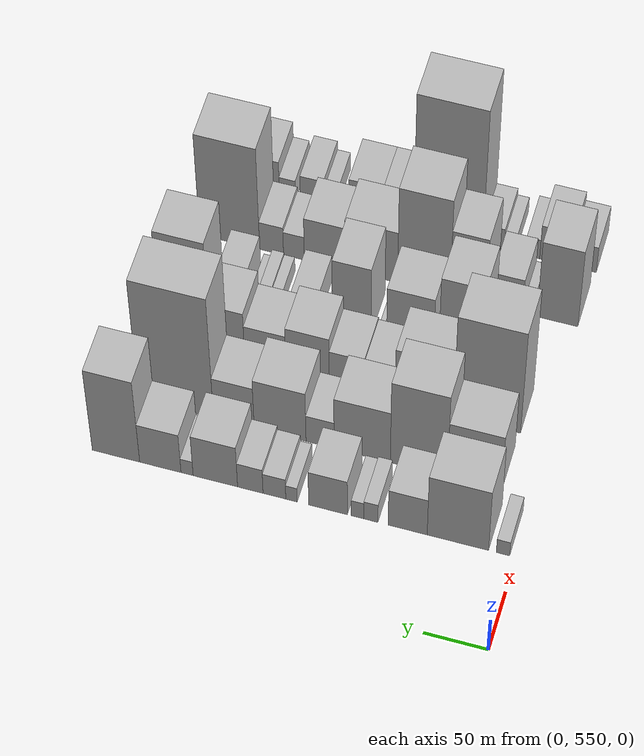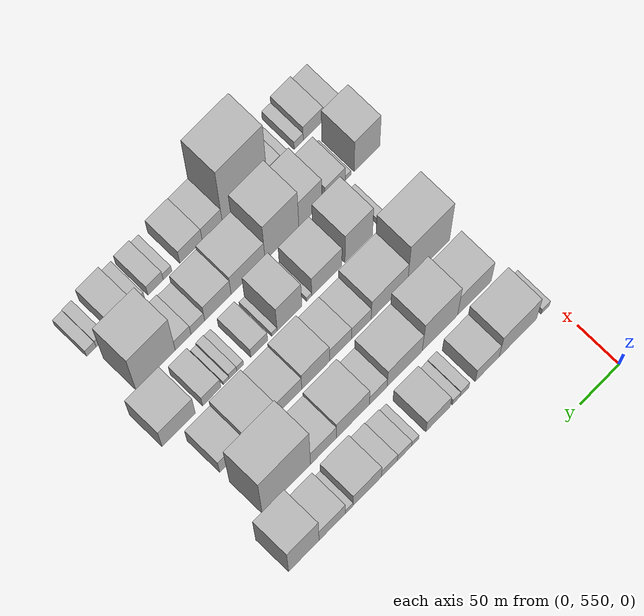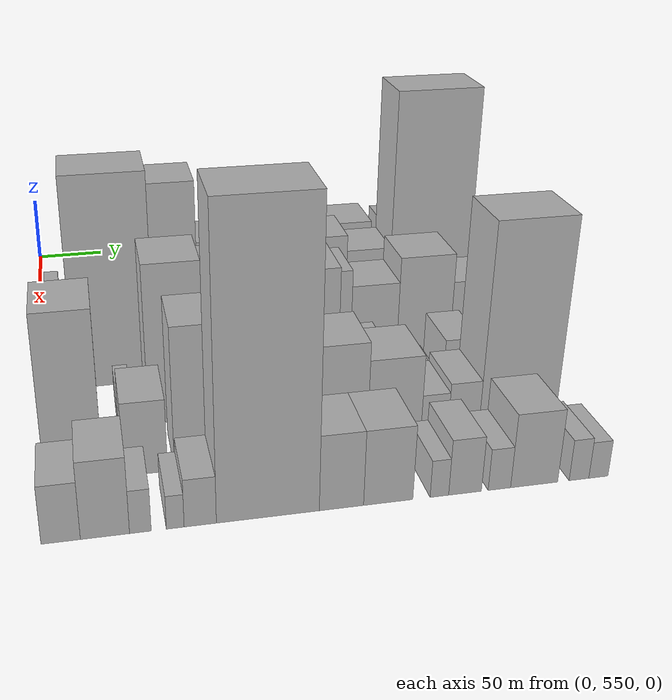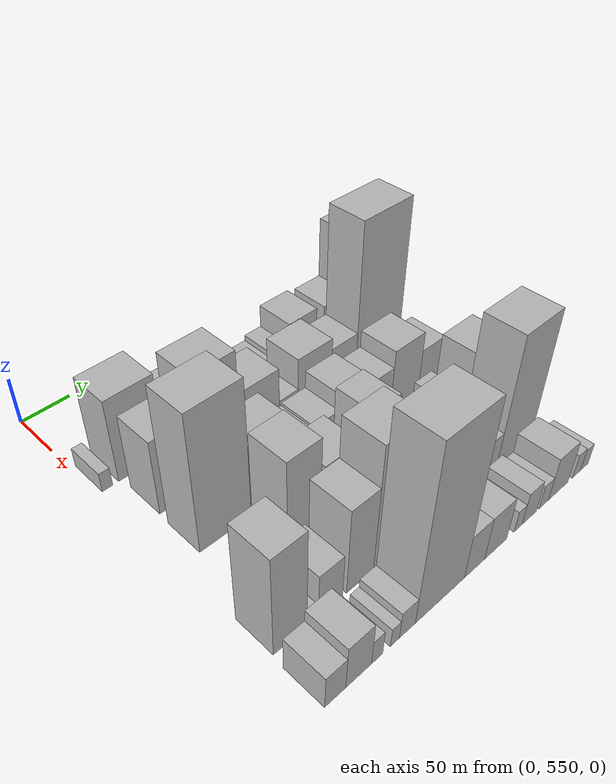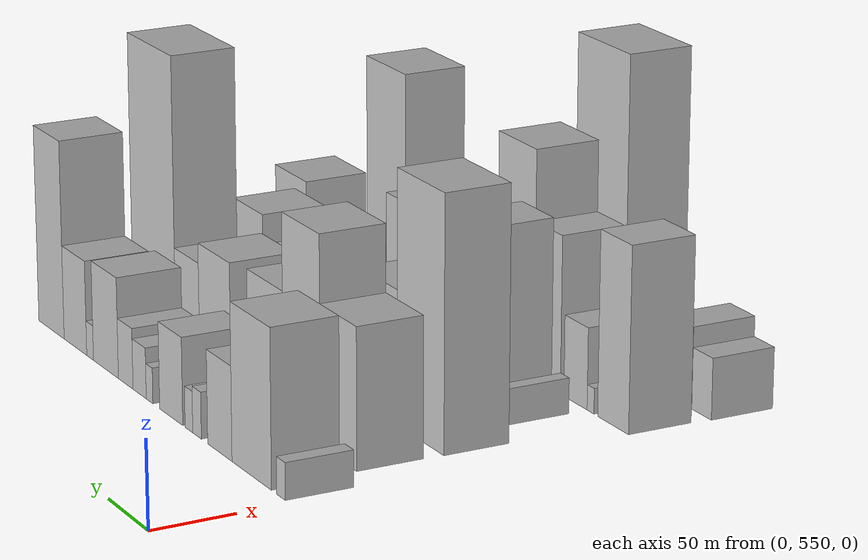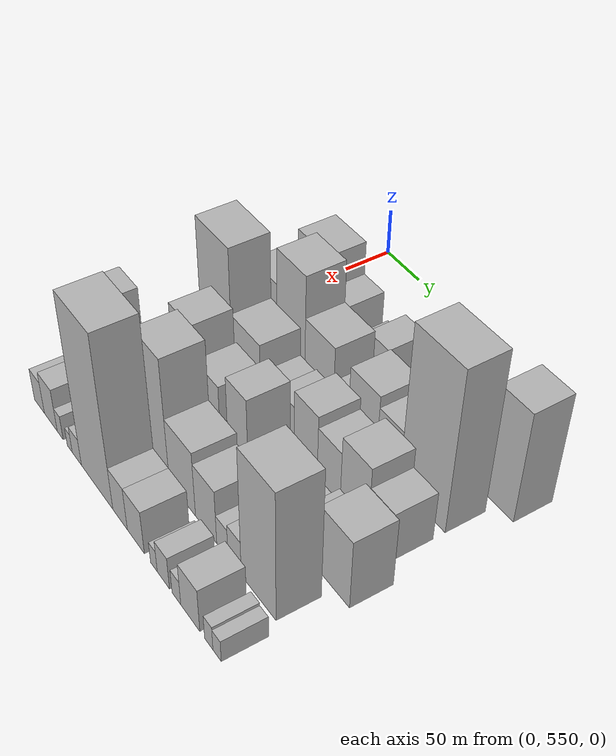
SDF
<sdf version="1.6">
 <world name="default">
  <model name="building_46">
   <static>1</static>
   <pose>100.0000 560.1286 0 0.000000 0.000000 0.000000</pose>
   <link name="link">
    <pose>0 0 10.50 0 0 0</pose>
    <collision name="collision"><geometry><box><size>40.0000 10.4033 21.0000</size></box></geometry></collision>
    <visual name="visual">
     <cast_shadows>0</cast_shadows>
     <geometry><box><size>40.0000 10.4033 21.0000</size></box></geometry>
     <material>
      <script>
       <uri>model://HANNAS_wall/materials/scripts</uri>
       <uri>model://HANNAS_wall/materials/textures</uri>
       <name>vrc/HANNAS_wall</name>
      </script>
     </material>
    </visual>
   </link>
  </model>
  <model name="building_47">
   <static>1</static>
   <pose>100.0000 595.1719 0 0.000000 0.000000 0.000000</pose>
   <link name="link">
    <pose>0 0 45.00 0 0 0</pose>
    <collision name="collision"><geometry><box><size>40.0000 47.6834 90.0000</size></box></geometry></collision>
    <visual name="visual">
     <cast_shadows>0</cast_shadows>
     <geometry><box><size>40.0000 47.6834 90.0000</size></box></geometry>
     <material>
      <script>
       <uri>model://HANNAS_wall/materials/scripts</uri>
       <uri>model://HANNAS_wall/materials/textures</uri>
       <name>vrc/HANNAS_wall</name>
      </script>
     </material>
    </visual>
   </link>
  </model>
  <model name="building_48">
   <static>1</static>
   <pose>100.0000 634.2060 0 0.000000 0.000000 0.000000</pose>
   <link name="link">
    <pose>0 0 27.00 0 0 0</pose>
    <collision name="collision"><geometry><box><size>40.0000 30.3847 54.0000</size></box></geometry></collision>
    <visual name="visual">
     <cast_shadows>0</cast_shadows>
     <geometry><box><size>40.0000 30.3847 54.0000</size></box></geometry>
     <material>
      <script>
       <uri>model://HANNAS_wall/materials/scripts</uri>
       <uri>model://HANNAS_wall/materials/textures</uri>
       <name>vrc/HANNAS_wall</name>
      </script>
     </material>
    </visual>
   </link>
  </model>
  <model name="building_49">
   <static>1</static>
   <pose>100.0000 662.9370 0 0.000000 0.000000 0.000000</pose>
   <link name="link">
    <pose>0 0 13.50 0 0 0</pose>
    <collision name="collision"><geometry><box><size>40.0000 11.0773 27.0000</size></box></geometry></collision>
    <visual name="visual">
     <cast_shadows>0</cast_shadows>
     <geometry><box><size>40.0000 11.0773 27.0000</size></box></geometry>
     <material>
      <script>
       <uri>model://HANNAS_wall/materials/scripts</uri>
       <uri>model://HANNAS_wall/materials/textures</uri>
       <name>vrc/HANNAS_wall</name>
      </script>
     </material>
    </visual>
   </link>
  </model>
  <model name="building_50">
   <static>1</static>
   <pose>100.0000 673.3901 0 0.000000 0.000000 0.000000</pose>
   <link name="link">
    <pose>0 0 12.00 0 0 0</pose>
    <collision name="collision"><geometry><box><size>40.0000 9.8288 24.0000</size></box></geometry></collision>
    <visual name="visual">
     <cast_shadows>0</cast_shadows>
     <geometry><box><size>40.0000 9.8288 24.0000</size></box></geometry>
     <material>
      <script>
       <uri>model://HANNAS_wall/materials/scripts</uri>
       <uri>model://HANNAS_wall/materials/textures</uri>
       <name>vrc/HANNAS_wall</name>
      </script>
     </material>
    </visual>
   </link>
  </model>
  <model name="building_51">
   <static>1</static>
   <pose>100.0000 696.4857 0 0.000000 0.000000 0.000000</pose>
   <link name="link">
    <pose>0 0 25.50 0 0 0</pose>
    <collision name="collision"><geometry><box><size>40.0000 30.3625 51.0000</size></box></geometry></collision>
    <visual name="visual">
     <cast_shadows>0</cast_shadows>
     <geometry><box><size>40.0000 30.3625 51.0000</size></box></geometry>
     <material>
      <script>
       <uri>model://HANNAS_wall/materials/scripts</uri>
       <uri>model://HANNAS_wall/materials/textures</uri>
       <name>vrc/HANNAS_wall</name>
      </script>
     </material>
    </visual>
   </link>
  </model>
  <model name="building_52">
   <static>1</static>
   <pose>100.0000 725.1748 0 0.000000 0.000000 0.000000</pose>
   <link name="link">
    <pose>0 0 10.50 0 0 0</pose>
    <collision name="collision"><geometry><box><size>40.0000 9.0157 21.0000</size></box></geometry></collision>
    <visual name="visual">
     <cast_shadows>0</cast_shadows>
     <geometry><box><size>40.0000 9.0157 21.0000</size></box></geometry>
     <material>
      <script>
       <uri>model://HANNAS_wall/materials/scripts</uri>
       <uri>model://HANNAS_wall/materials/textures</uri>
       <name>vrc/HANNAS_wall</name>
      </script>
     </material>
    </visual>
   </link>
  </model>
  <model name="building_53">
   <static>1</static>
   <pose>100.0000 738.6402 0 0.000000 0.000000 0.000000</pose>
   <link name="link">
    <pose>0 0 15.00 0 0 0</pose>
    <collision name="collision"><geometry><box><size>40.0000 17.9151 30.0000</size></box></geometry></collision>
    <visual name="visual">
     <cast_shadows>0</cast_shadows>
     <geometry><box><size>40.0000 17.9151 30.0000</size></box></geometry>
     <material>
      <script>
       <uri>model://HANNAS_wall/materials/scripts</uri>
       <uri>model://HANNAS_wall/materials/textures</uri>
       <name>vrc/HANNAS_wall</name>
      </script>
     </material>
    </visual>
   </link>
  </model>
  <model name="building_54">
   <static>1</static>
   <pose>100.0000 757.6617 0 0.000000 0.000000 0.000000</pose>
   <link name="link">
    <pose>0 0 18.00 0 0 0</pose>
    <collision name="collision"><geometry><box><size>40.0000 20.1278 36.0000</size></box></geometry></collision>
    <visual name="visual">
     <cast_shadows>0</cast_shadows>
     <geometry><box><size>40.0000 20.1278 36.0000</size></box></geometry>
     <material>
      <script>
       <uri>model://HANNAS_wall/materials/scripts</uri>
       <uri>model://HANNAS_wall/materials/textures</uri>
       <name>vrc/HANNAS_wall</name>
      </script>
     </material>
    </visual>
   </link>
  </model>
  <model name="building_55">
   <static>1</static>
   <pose>100.0000 785.3259 0 0.000000 0.000000 0.000000</pose>
   <link name="link">
    <pose>0 0 30.00 0 0 0</pose>
    <collision name="collision"><geometry><box><size>40.0000 35.2008 60.0000</size></box></geometry></collision>
    <visual name="visual">
     <cast_shadows>0</cast_shadows>
     <geometry><box><size>40.0000 35.2008 60.0000</size></box></geometry>
     <material>
      <script>
       <uri>model://HANNAS_wall/materials/scripts</uri>
       <uri>model://HANNAS_wall/materials/textures</uri>
       <name>vrc/HANNAS_wall</name>
      </script>
     </material>
    </visual>
   </link>
  </model>
  <model name="building_56">
   <static>1</static>
   <pose>100.0000 807.7318 0 0.000000 0.000000 0.000000</pose>
   <link name="link">
    <pose>0 0 10.50 0 0 0</pose>
    <collision name="collision"><geometry><box><size>40.0000 9.6110 21.0000</size></box></geometry></collision>
    <visual name="visual">
     <cast_shadows>0</cast_shadows>
     <geometry><box><size>40.0000 9.6110 21.0000</size></box></geometry>
     <material>
      <script>
       <uri>model://HANNAS_wall/materials/scripts</uri>
       <uri>model://HANNAS_wall/materials/textures</uri>
       <name>vrc/HANNAS_wall</name>
      </script>
     </material>
    </visual>
   </link>
  </model>
  <model name="building_57">
   <static>1</static>
   <pose>100.0000 828.9677 0 0.000000 0.000000 0.000000</pose>
   <link name="link">
    <pose>0 0 28.50 0 0 0</pose>
    <collision name="collision"><geometry><box><size>40.0000 32.8608 57.0000</size></box></geometry></collision>
    <visual name="visual">
     <cast_shadows>0</cast_shadows>
     <geometry><box><size>40.0000 32.8608 57.0000</size></box></geometry>
     <material>
      <script>
       <uri>model://HANNAS_wall/materials/scripts</uri>
       <uri>model://HANNAS_wall/materials/textures</uri>
       <name>vrc/HANNAS_wall</name>
      </script>
     </material>
    </visual>
   </link>
  </model>
  <model name="building_58">
   <static>1</static>
   <pose>100.0000 864.2887 0 0.000000 0.000000 0.000000</pose>
   <link name="link">
    <pose>0 0 60.00 0 0 0</pose>
    <collision name="collision"><geometry><box><size>40.0000 37.7812 120.0000</size></box></geometry></collision>
    <visual name="visual">
     <cast_shadows>0</cast_shadows>
     <geometry><box><size>40.0000 37.7812 120.0000</size></box></geometry>
     <material>
      <script>
       <uri>model://HANNAS_wall/materials/scripts</uri>
       <uri>model://HANNAS_wall/materials/textures</uri>
       <name>vrc/HANNAS_wall</name>
      </script>
     </material>
    </visual>
   </link>
  </model>
  <model name="building_105">
   <static>1</static>
   <pose>152.0000 596.1161 0 0.000000 0.000000 0.000000</pose>
   <link name="link">
    <pose>0 0 40.50 0 0 0</pose>
    <collision name="collision"><geometry><box><size>40.0000 42.6399 81.0000</size></box></geometry></collision>
    <visual name="visual">
     <cast_shadows>0</cast_shadows>
     <geometry><box><size>40.0000 42.6399 81.0000</size></box></geometry>
     <material>
      <script>
       <uri>model://HANNAS_wall/materials/scripts</uri>
       <uri>model://HANNAS_wall/materials/textures</uri>
       <name>vrc/HANNAS_wall</name>
      </script>
     </material>
    </visual>
   </link>
  </model>
  <model name="building_106">
   <static>1</static>
   <pose>152.0000 639.8982 0 0.000000 0.000000 0.000000</pose>
   <link name="link">
    <pose>0 0 60.00 0 0 0</pose>
    <collision name="collision"><geometry><box><size>40.0000 44.9244 120.0000</size></box></geometry></collision>
    <visual name="visual">
     <cast_shadows>0</cast_shadows>
     <geometry><box><size>40.0000 44.9244 120.0000</size></box></geometry>
     <material>
      <script>
       <uri>model://HANNAS_wall/materials/scripts</uri>
       <uri>model://HANNAS_wall/materials/textures</uri>
       <name>vrc/HANNAS_wall</name>
      </script>
     </material>
    </visual>
   </link>
  </model>
  <model name="building_107">
   <static>1</static>
   <pose>152.0000 684.5421 0 0.000000 0.000000 0.000000</pose>
   <link name="link">
    <pose>0 0 37.50 0 0 0</pose>
    <collision name="collision"><geometry><box><size>40.0000 44.3634 75.0000</size></box></geometry></collision>
    <visual name="visual">
     <cast_shadows>0</cast_shadows>
     <geometry><box><size>40.0000 44.3634 75.0000</size></box></geometry>
     <material>
      <script>
       <uri>model://HANNAS_wall/materials/scripts</uri>
       <uri>model://HANNAS_wall/materials/textures</uri>
       <name>vrc/HANNAS_wall</name>
      </script>
     </material>
    </visual>
   </link>
  </model>
  <model name="building_108">
   <static>1</static>
   <pose>152.0000 717.8765 0 0.000000 0.000000 0.000000</pose>
   <link name="link">
    <pose>0 0 19.50 0 0 0</pose>
    <collision name="collision"><geometry><box><size>40.0000 22.3053 39.0000</size></box></geometry></collision>
    <visual name="visual">
     <cast_shadows>0</cast_shadows>
     <geometry><box><size>40.0000 22.3053 39.0000</size></box></geometry>
     <material>
      <script>
       <uri>model://HANNAS_wall/materials/scripts</uri>
       <uri>model://HANNAS_wall/materials/textures</uri>
       <name>vrc/HANNAS_wall</name>
      </script>
     </material>
    </visual>
   </link>
  </model>
  <model name="building_109">
   <static>1</static>
   <pose>152.0000 749.6627 0 0.000000 0.000000 0.000000</pose>
   <link name="link">
    <pose>0 0 36.00 0 0 0</pose>
    <collision name="collision"><geometry><box><size>40.0000 41.2671 72.0000</size></box></geometry></collision>
    <visual name="visual">
     <cast_shadows>0</cast_shadows>
     <geometry><box><size>40.0000 41.2671 72.0000</size></box></geometry>
     <material>
      <script>
       <uri>model://HANNAS_wall/materials/scripts</uri>
       <uri>model://HANNAS_wall/materials/textures</uri>
       <name>vrc/HANNAS_wall</name>
      </script>
     </material>
    </visual>
   </link>
  </model>
  <model name="building_110">
   <static>1</static>
   <pose>152.0000 786.5285 0 0.000000 0.000000 0.000000</pose>
   <link name="link">
    <pose>0 0 30.00 0 0 0</pose>
    <collision name="collision"><geometry><box><size>40.0000 32.4644 60.0000</size></box></geometry></collision>
    <visual name="visual">
     <cast_shadows>0</cast_shadows>
     <geometry><box><size>40.0000 32.4644 60.0000</size></box></geometry>
     <material>
      <script>
       <uri>model://HANNAS_wall/materials/scripts</uri>
       <uri>model://HANNAS_wall/materials/textures</uri>
       <name>vrc/HANNAS_wall</name>
      </script>
     </material>
    </visual>
   </link>
  </model>
  <model name="building_111">
   <static>1</static>
   <pose>152.0000 832.8125 0 0.000000 0.000000 0.000000</pose>
   <link name="link">
    <pose>0 0 87.00 0 0 0</pose>
    <collision name="collision"><geometry><box><size>40.0000 60.1036 174.0000</size></box></geometry></collision>
    <visual name="visual">
     <cast_shadows>0</cast_shadows>
     <geometry><box><size>40.0000 60.1036 174.0000</size></box></geometry>
     <material>
      <script>
       <uri>model://HANNAS_wall/materials/scripts</uri>
       <uri>model://HANNAS_wall/materials/textures</uri>
       <name>vrc/HANNAS_wall</name>
      </script>
     </material>
    </visual>
   </link>
  </model>
  <model name="building_152">
   <static>1</static>
   <pose>204.0000 600.3227 0 0.000000 0.000000 0.000000</pose>
   <link name="link">
    <pose>0 0 73.50 0 0 0</pose>
    <collision name="collision"><geometry><box><size>40.0000 53.1082 147.0000</size></box></geometry></collision>
    <visual name="visual">
     <cast_shadows>0</cast_shadows>
     <geometry><box><size>40.0000 53.1082 147.0000</size></box></geometry>
     <material>
      <script>
       <uri>model://HANNAS_wall/materials/scripts</uri>
       <uri>model://HANNAS_wall/materials/textures</uri>
       <name>vrc/HANNAS_wall</name>
      </script>
     </material>
    </visual>
   </link>
  </model>
  <model name="building_153">
   <static>1</static>
   <pose>204.0000 650.0139 0 0.000000 0.000000 0.000000</pose>
   <link name="link">
    <pose>0 0 39.00 0 0 0</pose>
    <collision name="collision"><geometry><box><size>40.0000 46.2743 78.0000</size></box></geometry></collision>
    <visual name="visual">
     <cast_shadows>0</cast_shadows>
     <geometry><box><size>40.0000 46.2743 78.0000</size></box></geometry>
     <material>
      <script>
       <uri>model://HANNAS_wall/materials/scripts</uri>
       <uri>model://HANNAS_wall/materials/textures</uri>
       <name>vrc/HANNAS_wall</name>
      </script>
     </material>
    </visual>
   </link>
  </model>
  <model name="building_154">
   <static>1</static>
   <pose>204.0000 685.4696 0 0.000000 0.000000 0.000000</pose>
   <link name="link">
    <pose>0 0 24.00 0 0 0</pose>
    <collision name="collision"><geometry><box><size>40.0000 24.6371 48.0000</size></box></geometry></collision>
    <visual name="visual">
     <cast_shadows>0</cast_shadows>
     <geometry><box><size>40.0000 24.6371 48.0000</size></box></geometry>
     <material>
      <script>
       <uri>model://HANNAS_wall/materials/scripts</uri>
       <uri>model://HANNAS_wall/materials/textures</uri>
       <name>vrc/HANNAS_wall</name>
      </script>
     </material>
    </visual>
   </link>
  </model>
  <model name="building_155">
   <static>1</static>
   <pose>204.0000 711.7143 0 0.000000 0.000000 0.000000</pose>
   <link name="link">
    <pose>0 0 25.50 0 0 0</pose>
    <collision name="collision"><geometry><box><size>40.0000 27.8524 51.0000</size></box></geometry></collision>
    <visual name="visual">
     <cast_shadows>0</cast_shadows>
     <geometry><box><size>40.0000 27.8524 51.0000</size></box></geometry>
     <material>
      <script>
       <uri>model://HANNAS_wall/materials/scripts</uri>
       <uri>model://HANNAS_wall/materials/textures</uri>
       <name>vrc/HANNAS_wall</name>
      </script>
     </material>
    </visual>
   </link>
  </model>
  <model name="building_156">
   <static>1</static>
   <pose>204.0000 743.0435 0 0.000000 0.000000 0.000000</pose>
   <link name="link">
    <pose>0 0 34.50 0 0 0</pose>
    <collision name="collision"><geometry><box><size>40.0000 34.8059 69.0000</size></box></geometry></collision>
    <visual name="visual">
     <cast_shadows>0</cast_shadows>
     <geometry><box><size>40.0000 34.8059 69.0000</size></box></geometry>
     <material>
      <script>
       <uri>model://HANNAS_wall/materials/scripts</uri>
       <uri>model://HANNAS_wall/materials/textures</uri>
       <name>vrc/HANNAS_wall</name>
      </script>
     </material>
    </visual>
   </link>
  </model>
  <model name="building_157">
   <static>1</static>
   <pose>204.0000 776.9149 0 0.000000 0.000000 0.000000</pose>
   <link name="link">
    <pose>0 0 28.50 0 0 0</pose>
    <collision name="collision"><geometry><box><size>40.0000 32.9371 57.0000</size></box></geometry></collision>
    <visual name="visual">
     <cast_shadows>0</cast_shadows>
     <geometry><box><size>40.0000 32.9371 57.0000</size></box></geometry>
     <material>
      <script>
       <uri>model://HANNAS_wall/materials/scripts</uri>
       <uri>model://HANNAS_wall/materials/textures</uri>
       <name>vrc/HANNAS_wall</name>
      </script>
     </material>
    </visual>
   </link>
  </model>
  <model name="building_158">
   <static>1</static>
   <pose>204.0000 812.6233 0 0.000000 0.000000 0.000000</pose>
   <link name="link">
    <pose>0 0 37.50 0 0 0</pose>
    <collision name="collision"><geometry><box><size>40.0000 38.4797 75.0000</size></box></geometry></collision>
    <visual name="visual">
     <cast_shadows>0</cast_shadows>
     <geometry><box><size>40.0000 38.4797 75.0000</size></box></geometry>
     <material>
      <script>
       <uri>model://HANNAS_wall/materials/scripts</uri>
       <uri>model://HANNAS_wall/materials/textures</uri>
       <name>vrc/HANNAS_wall</name>
      </script>
     </material>
    </visual>
   </link>
  </model>
  <model name="building_159">
   <static>1</static>
   <pose>204.0000 847.3973 0 0.000000 0.000000 0.000000</pose>
   <link name="link">
    <pose>0 0 27.00 0 0 0</pose>
    <collision name="collision"><geometry><box><size>40.0000 31.0683 54.0000</size></box></geometry></collision>
    <visual name="visual">
     <cast_shadows>0</cast_shadows>
     <geometry><box><size>40.0000 31.0683 54.0000</size></box></geometry>
     <material>
      <script>
       <uri>model://HANNAS_wall/materials/scripts</uri>
       <uri>model://HANNAS_wall/materials/textures</uri>
       <name>vrc/HANNAS_wall</name>
      </script>
     </material>
    </visual>
   </link>
  </model>
  <model name="building_201">
   <static>1</static>
   <pose>256.0000 603.2808 0 0.000000 0.000000 0.000000</pose>
   <link name="link">
    <pose>0 0 10.50 0 0 0</pose>
    <collision name="collision"><geometry><box><size>40.0000 9.1480 21.0000</size></box></geometry></collision>
    <visual name="visual">
     <cast_shadows>0</cast_shadows>
     <geometry><box><size>40.0000 9.1480 21.0000</size></box></geometry>
     <material>
      <script>
       <uri>model://HANNAS_wall/materials/scripts</uri>
       <uri>model://HANNAS_wall/materials/textures</uri>
       <name>vrc/HANNAS_wall</name>
      </script>
     </material>
    </visual>
   </link>
  </model>
  <model name="building_202">
   <static>1</static>
   <pose>256.0000 635.2684 0 0.000000 0.000000 0.000000</pose>
   <link name="link">
    <pose>0 0 54.00 0 0 0</pose>
    <collision name="collision"><geometry><box><size>40.0000 34.8272 108.0000</size></box></geometry></collision>
    <visual name="visual">
     <cast_shadows>0</cast_shadows>
     <geometry><box><size>40.0000 34.8272 108.0000</size></box></geometry>
     <material>
      <script>
       <uri>model://HANNAS_wall/materials/scripts</uri>
       <uri>model://HANNAS_wall/materials/textures</uri>
       <name>vrc/HANNAS_wall</name>
      </script>
     </material>
    </visual>
   </link>
  </model>
  <model name="building_203">
   <static>1</static>
   <pose>256.0000 675.6462 0 0.000000 0.000000 0.000000</pose>
   <link name="link">
    <pose>0 0 37.50 0 0 0</pose>
    <collision name="collision"><geometry><box><size>40.0000 37.9285 75.0000</size></box></geometry></collision>
    <visual name="visual">
     <cast_shadows>0</cast_shadows>
     <geometry><box><size>40.0000 37.9285 75.0000</size></box></geometry>
     <material>
      <script>
       <uri>model://HANNAS_wall/materials/scripts</uri>
       <uri>model://HANNAS_wall/materials/textures</uri>
       <name>vrc/HANNAS_wall</name>
      </script>
     </material>
    </visual>
   </link>
  </model>
  <model name="building_204">
   <static>1</static>
   <pose>256.0000 697.8401 0 0.000000 0.000000 0.000000</pose>
   <link name="link">
    <pose>0 0 7.50 0 0 0</pose>
    <collision name="collision"><geometry><box><size>40.0000 6.4592 15.0000</size></box></geometry></collision>
    <visual name="visual">
     <cast_shadows>0</cast_shadows>
     <geometry><box><size>40.0000 6.4592 15.0000</size></box></geometry>
     <material>
      <script>
       <uri>model://HANNAS_wall/materials/scripts</uri>
       <uri>model://HANNAS_wall/materials/textures</uri>
       <name>vrc/HANNAS_wall</name>
      </script>
     </material>
    </visual>
   </link>
  </model>
  <model name="building_205">
   <static>1</static>
   <pose>256.0000 722.6263 0 0.000000 0.000000 0.000000</pose>
   <link name="link">
    <pose>0 0 48.00 0 0 0</pose>
    <collision name="collision"><geometry><box><size>40.0000 31.1133 96.0000</size></box></geometry></collision>
    <visual name="visual">
     <cast_shadows>0</cast_shadows>
     <geometry><box><size>40.0000 31.1133 96.0000</size></box></geometry>
     <material>
      <script>
       <uri>model://HANNAS_wall/materials/scripts</uri>
       <uri>model://HANNAS_wall/materials/textures</uri>
       <name>vrc/HANNAS_wall</name>
      </script>
     </material>
    </visual>
   </link>
  </model>
  <model name="building_206">
   <static>1</static>
   <pose>256.0000 741.6091 0 0.000000 0.000000 0.000000</pose>
   <link name="link">
    <pose>0 0 7.50 0 0 0</pose>
    <collision name="collision"><geometry><box><size>40.0000 6.8523 15.0000</size></box></geometry></collision>
    <visual name="visual">
     <cast_shadows>0</cast_shadows>
     <geometry><box><size>40.0000 6.8523 15.0000</size></box></geometry>
     <material>
      <script>
       <uri>model://HANNAS_wall/materials/scripts</uri>
       <uri>model://HANNAS_wall/materials/textures</uri>
       <name>vrc/HANNAS_wall</name>
      </script>
     </material>
    </visual>
   </link>
  </model>
  <model name="building_207">
   <static>1</static>
   <pose>256.0000 760.6740 0 0.000000 0.000000 0.000000</pose>
   <link name="link">
    <pose>0 0 18.00 0 0 0</pose>
    <collision name="collision"><geometry><box><size>40.0000 21.2776 36.0000</size></box></geometry></collision>
    <visual name="visual">
     <cast_shadows>0</cast_shadows>
     <geometry><box><size>40.0000 21.2776 36.0000</size></box></geometry>
     <material>
      <script>
       <uri>model://HANNAS_wall/materials/scripts</uri>
       <uri>model://HANNAS_wall/materials/textures</uri>
       <name>vrc/HANNAS_wall</name>
      </script>
     </material>
    </visual>
   </link>
  </model>
  <model name="building_208">
   <static>1</static>
   <pose>256.0000 784.5485 0 0.000000 0.000000 0.000000</pose>
   <link name="link">
    <pose>0 0 10.50 0 0 0</pose>
    <collision name="collision"><geometry><box><size>40.0000 8.4713 21.0000</size></box></geometry></collision>
    <visual name="visual">
     <cast_shadows>0</cast_shadows>
     <geometry><box><size>40.0000 8.4713 21.0000</size></box></geometry>
     <material>
      <script>
       <uri>model://HANNAS_wall/materials/scripts</uri>
       <uri>model://HANNAS_wall/materials/textures</uri>
       <name>vrc/HANNAS_wall</name>
      </script>
     </material>
    </visual>
   </link>
  </model>
  <model name="building_209">
   <static>1</static>
   <pose>256.0000 793.6407 0 0.000000 0.000000 0.000000</pose>
   <link name="link">
    <pose>0 0 12.00 0 0 0</pose>
    <collision name="collision"><geometry><box><size>40.0000 9.7132 24.0000</size></box></geometry></collision>
    <visual name="visual">
     <cast_shadows>0</cast_shadows>
     <geometry><box><size>40.0000 9.7132 24.0000</size></box></geometry>
     <material>
      <script>
       <uri>model://HANNAS_wall/materials/scripts</uri>
       <uri>model://HANNAS_wall/materials/textures</uri>
       <name>vrc/HANNAS_wall</name>
      </script>
     </material>
    </visual>
   </link>
  </model>
  <model name="building_210">
   <static>1</static>
   <pose>256.0000 802.0188 0 0.000000 0.000000 0.000000</pose>
   <link name="link">
    <pose>0 0 7.50 0 0 0</pose>
    <collision name="collision"><geometry><box><size>40.0000 7.0429 15.0000</size></box></geometry></collision>
    <visual name="visual">
     <cast_shadows>0</cast_shadows>
     <geometry><box><size>40.0000 7.0429 15.0000</size></box></geometry>
     <material>
      <script>
       <uri>model://HANNAS_wall/materials/scripts</uri>
       <uri>model://HANNAS_wall/materials/textures</uri>
       <name>vrc/HANNAS_wall</name>
      </script>
     </material>
    </visual>
   </link>
  </model>
  <model name="building_211">
   <static>1</static>
   <pose>256.0000 820.0213 0 0.000000 0.000000 0.000000</pose>
   <link name="link">
    <pose>0 0 19.50 0 0 0</pose>
    <collision name="collision"><geometry><box><size>40.0000 22.9620 39.0000</size></box></geometry></collision>
    <visual name="visual">
     <cast_shadows>0</cast_shadows>
     <geometry><box><size>40.0000 22.9620 39.0000</size></box></geometry>
     <material>
      <script>
       <uri>model://HANNAS_wall/materials/scripts</uri>
       <uri>model://HANNAS_wall/materials/textures</uri>
       <name>vrc/HANNAS_wall</name>
      </script>
     </material>
    </visual>
   </link>
  </model>
  <model name="building_212">
   <static>1</static>
   <pose>256.0000 861.2176 0 0.000000 0.000000 0.000000</pose>
   <link name="link">
    <pose>0 0 37.50 0 0 0</pose>
    <collision name="collision"><geometry><box><size>40.0000 41.4305 75.0000</size></box></geometry></collision>
    <visual name="visual">
     <cast_shadows>0</cast_shadows>
     <geometry><box><size>40.0000 41.4305 75.0000</size></box></geometry>
     <material>
      <script>
       <uri>model://HANNAS_wall/materials/scripts</uri>
       <uri>model://HANNAS_wall/materials/textures</uri>
       <name>vrc/HANNAS_wall</name>
      </script>
     </material>
    </visual>
   </link>
  </model>
  <model name="building_253">
   <static>1</static>
   <pose>308.0000 571.3265 0 0.000000 0.000000 0.000000</pose>
   <link name="link">
    <pose>0 0 54.00 0 0 0</pose>
    <collision name="collision"><geometry><box><size>40.0000 32.7615 108.0000</size></box></geometry></collision>
    <visual name="visual">
     <cast_shadows>0</cast_shadows>
     <geometry><box><size>40.0000 32.7615 108.0000</size></box></geometry>
     <material>
      <script>
       <uri>model://HANNAS_wall/materials/scripts</uri>
       <uri>model://HANNAS_wall/materials/textures</uri>
       <name>vrc/HANNAS_wall</name>
      </script>
     </material>
    </visual>
   </link>
  </model>
  <model name="building_254">
   <static>1</static>
   <pose>308.0000 595.3914 0 0.000000 0.000000 0.000000</pose>
   <link name="link">
    <pose>0 0 7.50 0 0 0</pose>
    <collision name="collision"><geometry><box><size>40.0000 7.3682 15.0000</size></box></geometry></collision>
    <visual name="visual">
     <cast_shadows>0</cast_shadows>
     <geometry><box><size>40.0000 7.3682 15.0000</size></box></geometry>
     <material>
      <script>
       <uri>model://HANNAS_wall/materials/scripts</uri>
       <uri>model://HANNAS_wall/materials/textures</uri>
       <name>vrc/HANNAS_wall</name>
      </script>
     </material>
    </visual>
   </link>
  </model>
  <model name="building_255">
   <static>1</static>
   <pose>308.0000 611.7311 0 0.000000 0.000000 0.000000</pose>
   <link name="link">
    <pose>0 0 24.00 0 0 0</pose>
    <collision name="collision"><geometry><box><size>40.0000 25.3111 48.0000</size></box></geometry></collision>
    <visual name="visual">
     <cast_shadows>0</cast_shadows>
     <geometry><box><size>40.0000 25.3111 48.0000</size></box></geometry>
     <material>
      <script>
       <uri>model://HANNAS_wall/materials/scripts</uri>
       <uri>model://HANNAS_wall/materials/textures</uri>
       <name>vrc/HANNAS_wall</name>
      </script>
     </material>
    </visual>
   </link>
  </model>
  <model name="building_256">
   <static>1</static>
   <pose>308.0000 643.0933 0 0.000000 0.000000 0.000000</pose>
   <link name="link">
    <pose>0 0 46.50 0 0 0</pose>
    <collision name="collision"><geometry><box><size>40.0000 29.4133 93.0000</size></box></geometry></collision>
    <visual name="visual">
     <cast_shadows>0</cast_shadows>
     <geometry><box><size>40.0000 29.4133 93.0000</size></box></geometry>
     <material>
      <script>
       <uri>model://HANNAS_wall/materials/scripts</uri>
       <uri>model://HANNAS_wall/materials/textures</uri>
       <name>vrc/HANNAS_wall</name>
      </script>
     </material>
    </visual>
   </link>
  </model>
  <model name="building_257">
   <static>1</static>
   <pose>308.0000 679.0605 0 0.000000 0.000000 0.000000</pose>
   <link name="link">
    <pose>0 0 67.50 0 0 0</pose>
    <collision name="collision"><geometry><box><size>40.0000 42.5211 135.0000</size></box></geometry></collision>
    <visual name="visual">
     <cast_shadows>0</cast_shadows>
     <geometry><box><size>40.0000 42.5211 135.0000</size></box></geometry>
     <material>
      <script>
       <uri>model://HANNAS_wall/materials/scripts</uri>
       <uri>model://HANNAS_wall/materials/textures</uri>
       <name>vrc/HANNAS_wall</name>
      </script>
     </material>
    </visual>
   </link>
  </model>
  <model name="building_258">
   <static>1</static>
   <pose>308.0000 721.7254 0 0.000000 0.000000 0.000000</pose>
   <link name="link">
    <pose>0 0 36.00 0 0 0</pose>
    <collision name="collision"><geometry><box><size>40.0000 42.8087 72.0000</size></box></geometry></collision>
    <visual name="visual">
     <cast_shadows>0</cast_shadows>
     <geometry><box><size>40.0000 42.8087 72.0000</size></box></geometry>
     <material>
      <script>
       <uri>model://HANNAS_wall/materials/scripts</uri>
       <uri>model://HANNAS_wall/materials/textures</uri>
       <name>vrc/HANNAS_wall</name>
      </script>
     </material>
    </visual>
   </link>
  </model>
  <model name="building_259">
   <static>1</static>
   <pose>308.0000 759.6960 0 0.000000 0.000000 0.000000</pose>
   <link name="link">
    <pose>0 0 30.00 0 0 0</pose>
    <collision name="collision"><geometry><box><size>40.0000 33.1326 60.0000</size></box></geometry></collision>
    <visual name="visual">
     <cast_shadows>0</cast_shadows>
     <geometry><box><size>40.0000 33.1326 60.0000</size></box></geometry>
     <material>
      <script>
       <uri>model://HANNAS_wall/materials/scripts</uri>
       <uri>model://HANNAS_wall/materials/textures</uri>
       <name>vrc/HANNAS_wall</name>
      </script>
     </material>
    </visual>
   </link>
  </model>
  <model name="building_260">
   <static>1</static>
   <pose>308.0000 784.8075 0 0.000000 0.000000 0.000000</pose>
   <link name="link">
    <pose>0 0 16.50 0 0 0</pose>
    <collision name="collision"><geometry><box><size>40.0000 17.0904 33.0000</size></box></geometry></collision>
    <visual name="visual">
     <cast_shadows>0</cast_shadows>
     <geometry><box><size>40.0000 17.0904 33.0000</size></box></geometry>
     <material>
      <script>
       <uri>model://HANNAS_wall/materials/scripts</uri>
       <uri>model://HANNAS_wall/materials/textures</uri>
       <name>vrc/HANNAS_wall</name>
      </script>
     </material>
    </visual>
   </link>
  </model>
  <model name="building_261">
   <static>1</static>
   <pose>308.0000 803.1514 0 0.000000 0.000000 0.000000</pose>
   <link name="link">
    <pose>0 0 19.50 0 0 0</pose>
    <collision name="collision"><geometry><box><size>40.0000 19.5975 39.0000</size></box></geometry></collision>
    <visual name="visual">
     <cast_shadows>0</cast_shadows>
     <geometry><box><size>40.0000 19.5975 39.0000</size></box></geometry>
     <material>
      <script>
       <uri>model://HANNAS_wall/materials/scripts</uri>
       <uri>model://HANNAS_wall/materials/textures</uri>
       <name>vrc/HANNAS_wall</name>
      </script>
     </material>
    </visual>
   </link>
  </model>
  <model name="building_262">
   <static>1</static>
   <pose>308.0000 837.6015 0 0.000000 0.000000 0.000000</pose>
   <link name="link">
    <pose>0 0 70.50 0 0 0</pose>
    <collision name="collision"><geometry><box><size>40.0000 49.3026 141.0000</size></box></geometry></collision>
    <visual name="visual">
     <cast_shadows>0</cast_shadows>
     <geometry><box><size>40.0000 49.3026 141.0000</size></box></geometry>
     <material>
      <script>
       <uri>model://HANNAS_wall/materials/scripts</uri>
       <uri>model://HANNAS_wall/materials/textures</uri>
       <name>vrc/HANNAS_wall</name>
      </script>
     </material>
    </visual>
   </link>
  </model>
  <model name="building_305">
   <static>1</static>
   <pose>360.0000 563.2867 0 0.000000 0.000000 0.000000</pose>
   <link name="link">
    <pose>0 0 18.00 0 0 0</pose>
    <collision name="collision"><geometry><box><size>40.0000 20.2475 36.0000</size></box></geometry></collision>
    <visual name="visual">
     <cast_shadows>0</cast_shadows>
     <geometry><box><size>40.0000 20.2475 36.0000</size></box></geometry>
     <material>
      <script>
       <uri>model://HANNAS_wall/materials/scripts</uri>
       <uri>model://HANNAS_wall/materials/textures</uri>
       <name>vrc/HANNAS_wall</name>
      </script>
     </material>
    </visual>
   </link>
  </model>
  <model name="building_306">
   <static>1</static>
   <pose>360.0000 586.2087 0 0.000000 0.000000 0.000000</pose>
   <link name="link">
    <pose>0 0 24.00 0 0 0</pose>
    <collision name="collision"><geometry><box><size>40.0000 25.5966 48.0000</size></box></geometry></collision>
    <visual name="visual">
     <cast_shadows>0</cast_shadows>
     <geometry><box><size>40.0000 25.5966 48.0000</size></box></geometry>
     <material>
      <script>
       <uri>model://HANNAS_wall/materials/scripts</uri>
       <uri>model://HANNAS_wall/materials/textures</uri>
       <name>vrc/HANNAS_wall</name>
      </script>
     </material>
    </visual>
   </link>
  </model>
  <model name="building_307">
   <static>1</static>
   <pose>360.0000 604.7219 0 0.000000 0.000000 0.000000</pose>
   <link name="link">
    <pose>0 0 13.50 0 0 0</pose>
    <collision name="collision"><geometry><box><size>40.0000 11.4297 27.0000</size></box></geometry></collision>
    <visual name="visual">
     <cast_shadows>0</cast_shadows>
     <geometry><box><size>40.0000 11.4297 27.0000</size></box></geometry>
     <material>
      <script>
       <uri>model://HANNAS_wall/materials/scripts</uri>
       <uri>model://HANNAS_wall/materials/textures</uri>
       <name>vrc/HANNAS_wall</name>
      </script>
     </material>
    </visual>
   </link>
  </model>
  <model name="building_308">
   <static>1</static>
   <pose>360.0000 623.1693 0 0.000000 0.000000 0.000000</pose>
   <link name="link">
    <pose>0 0 10.50 0 0 0</pose>
    <collision name="collision"><geometry><box><size>40.0000 9.4651 21.0000</size></box></geometry></collision>
    <visual name="visual">
     <cast_shadows>0</cast_shadows>
     <geometry><box><size>40.0000 9.4651 21.0000</size></box></geometry>
     <material>
      <script>
       <uri>model://HANNAS_wall/materials/scripts</uri>
       <uri>model://HANNAS_wall/materials/textures</uri>
       <name>vrc/HANNAS_wall</name>
      </script>
     </material>
    </visual>
   </link>
  </model>
  <model name="building_309">
   <static>1</static>
   <pose>360.0000 636.5565 0 0.000000 0.000000 0.000000</pose>
   <link name="link">
    <pose>0 0 15.00 0 0 0</pose>
    <collision name="collision"><geometry><box><size>40.0000 17.3093 30.0000</size></box></geometry></collision>
    <visual name="visual">
     <cast_shadows>0</cast_shadows>
     <geometry><box><size>40.0000 17.3093 30.0000</size></box></geometry>
     <material>
      <script>
       <uri>model://HANNAS_wall/materials/scripts</uri>
       <uri>model://HANNAS_wall/materials/textures</uri>
       <name>vrc/HANNAS_wall</name>
      </script>
     </material>
    </visual>
   </link>
  </model>
  <model name="building_310">
   <static>1</static>
   <pose>360.0000 673.4862 0 0.000000 0.000000 0.000000</pose>
   <link name="link">
    <pose>0 0 93.00 0 0 0</pose>
    <collision name="collision"><geometry><box><size>40.0000 56.5501 186.0000</size></box></geometry></collision>
    <visual name="visual">
     <cast_shadows>0</cast_shadows>
     <geometry><box><size>40.0000 56.5501 186.0000</size></box></geometry>
     <material>
      <script>
       <uri>model://HANNAS_wall/materials/scripts</uri>
       <uri>model://HANNAS_wall/materials/textures</uri>
       <name>vrc/HANNAS_wall</name>
      </script>
     </material>
    </visual>
   </link>
  </model>
  <model name="building_311">
   <static>1</static>
   <pose>360.0000 714.2172 0 0.000000 0.000000 0.000000</pose>
   <link name="link">
    <pose>0 0 24.00 0 0 0</pose>
    <collision name="collision"><geometry><box><size>40.0000 24.9120 48.0000</size></box></geometry></collision>
    <visual name="visual">
     <cast_shadows>0</cast_shadows>
     <geometry><box><size>40.0000 24.9120 48.0000</size></box></geometry>
     <material>
      <script>
       <uri>model://HANNAS_wall/materials/scripts</uri>
       <uri>model://HANNAS_wall/materials/textures</uri>
       <name>vrc/HANNAS_wall</name>
      </script>
     </material>
    </visual>
   </link>
  </model>
  <model name="building_312">
   <static>1</static>
   <pose>360.0000 740.7594 0 0.000000 0.000000 0.000000</pose>
   <link name="link">
    <pose>0 0 24.00 0 0 0</pose>
    <collision name="collision"><geometry><box><size>40.0000 28.1724 48.0000</size></box></geometry></collision>
    <visual name="visual">
     <cast_shadows>0</cast_shadows>
     <geometry><box><size>40.0000 28.1724 48.0000</size></box></geometry>
     <material>
      <script>
       <uri>model://HANNAS_wall/materials/scripts</uri>
       <uri>model://HANNAS_wall/materials/textures</uri>
       <name>vrc/HANNAS_wall</name>
      </script>
     </material>
    </visual>
   </link>
  </model>
  <model name="building_313">
   <static>1</static>
   <pose>360.0000 770.2407 0 0.000000 0.000000 0.000000</pose>
   <link name="link">
    <pose>0 0 12.00 0 0 0</pose>
    <collision name="collision"><geometry><box><size>40.0000 10.7902 24.0000</size></box></geometry></collision>
    <visual name="visual">
     <cast_shadows>0</cast_shadows>
     <geometry><box><size>40.0000 10.7902 24.0000</size></box></geometry>
     <material>
      <script>
       <uri>model://HANNAS_wall/materials/scripts</uri>
       <uri>model://HANNAS_wall/materials/textures</uri>
       <name>vrc/HANNAS_wall</name>
      </script>
     </material>
    </visual>
   </link>
  </model>
  <model name="building_314">
   <static>1</static>
   <pose>360.0000 785.2454 0 0.000000 0.000000 0.000000</pose>
   <link name="link">
    <pose>0 0 18.00 0 0 0</pose>
    <collision name="collision"><geometry><box><size>40.0000 19.2192 36.0000</size></box></geometry></collision>
    <visual name="visual">
     <cast_shadows>0</cast_shadows>
     <geometry><box><size>40.0000 19.2192 36.0000</size></box></geometry>
     <material>
      <script>
       <uri>model://HANNAS_wall/materials/scripts</uri>
       <uri>model://HANNAS_wall/materials/textures</uri>
       <name>vrc/HANNAS_wall</name>
      </script>
     </material>
    </visual>
   </link>
  </model>
  <model name="building_315">
   <static>1</static>
   <pose>360.0000 805.5241 0 0.000000 0.000000 0.000000</pose>
   <link name="link">
    <pose>0 0 13.50 0 0 0</pose>
    <collision name="collision"><geometry><box><size>40.0000 13.3383 27.0000</size></box></geometry></collision>
    <visual name="visual">
     <cast_shadows>0</cast_shadows>
     <geometry><box><size>40.0000 13.3383 27.0000</size></box></geometry>
     <material>
      <script>
       <uri>model://HANNAS_wall/materials/scripts</uri>
       <uri>model://HANNAS_wall/materials/textures</uri>
       <name>vrc/HANNAS_wall</name>
      </script>
     </material>
    </visual>
   </link>
  </model>
  <model name="building_316">
   <static>1</static>
   <pose>360.0000 826.3528 0 0.000000 0.000000 0.000000</pose>
   <link name="link">
    <pose>0 0 24.00 0 0 0</pose>
    <collision name="collision"><geometry><box><size>40.0000 28.3191 48.0000</size></box></geometry></collision>
    <visual name="visual">
     <cast_shadows>0</cast_shadows>
     <geometry><box><size>40.0000 28.3191 48.0000</size></box></geometry>
     <material>
      <script>
       <uri>model://HANNAS_wall/materials/scripts</uri>
       <uri>model://HANNAS_wall/materials/textures</uri>
       <name>vrc/HANNAS_wall</name>
      </script>
     </material>
    </visual>
   </link>
  </model>
  <model name="building_317">
   <static>1</static>
   <pose>360.0000 853.5063 0 0.000000 0.000000 0.000000</pose>
   <link name="link">
    <pose>0 0 13.50 0 0 0</pose>
    <collision name="collision"><geometry><box><size>40.0000 11.9879 27.0000</size></box></geometry></collision>
    <visual name="visual">
     <cast_shadows>0</cast_shadows>
     <geometry><box><size>40.0000 11.9879 27.0000</size></box></geometry>
     <material>
      <script>
       <uri>model://HANNAS_wall/materials/scripts</uri>
       <uri>model://HANNAS_wall/materials/textures</uri>
       <name>vrc/HANNAS_wall</name>
      </script>
     </material>
    </visual>
   </link>
  </model>
  <model name="building_318">
   <static>1</static>
   <pose>360.0000 865.3886 0 0.000000 0.000000 0.000000</pose>
   <link name="link">
    <pose>0 0 12.00 0 0 0</pose>
    <collision name="collision"><geometry><box><size>40.0000 11.7766 24.0000</size></box></geometry></collision>
    <visual name="visual">
     <cast_shadows>0</cast_shadows>
     <geometry><box><size>40.0000 11.7766 24.0000</size></box></geometry>
     <material>
      <script>
       <uri>model://HANNAS_wall/materials/scripts</uri>
       <uri>model://HANNAS_wall/materials/textures</uri>
       <name>vrc/HANNAS_wall</name>
      </script>
     </material>
    </visual>
   </link>
  </model>
 </world>
</sdf>
